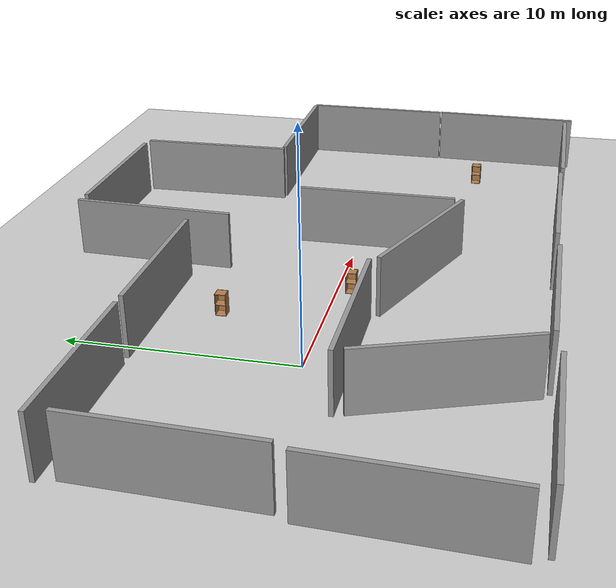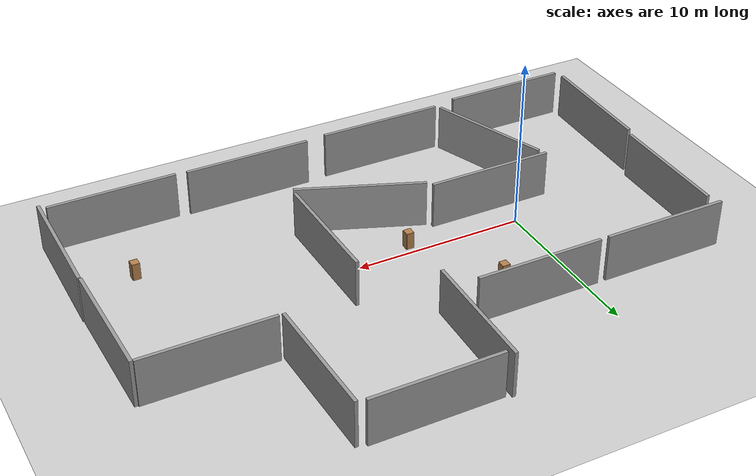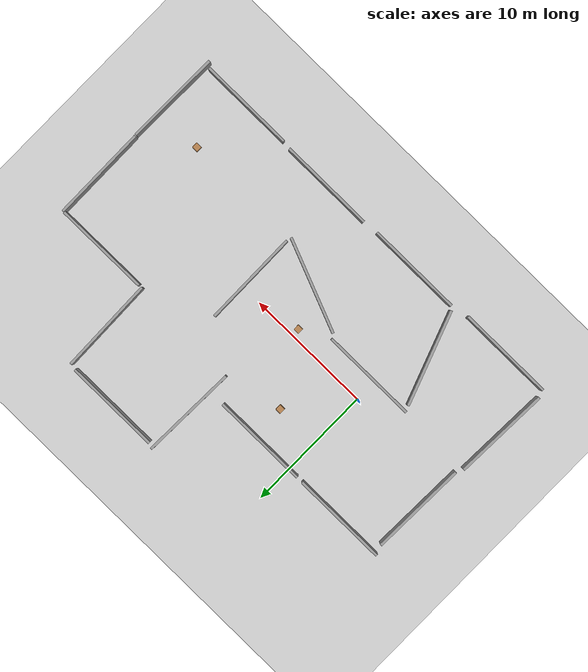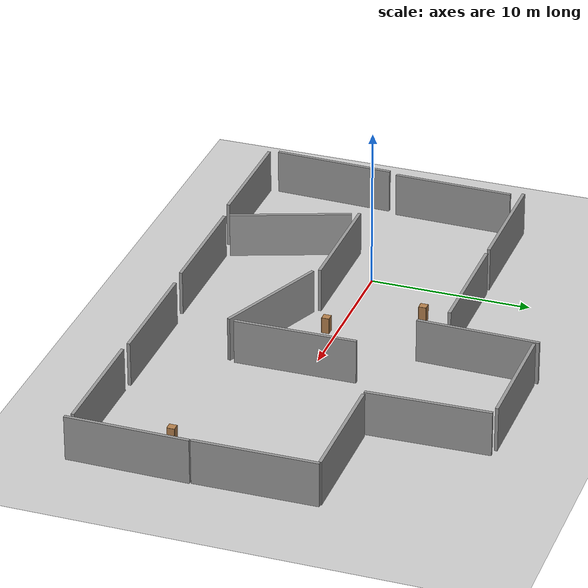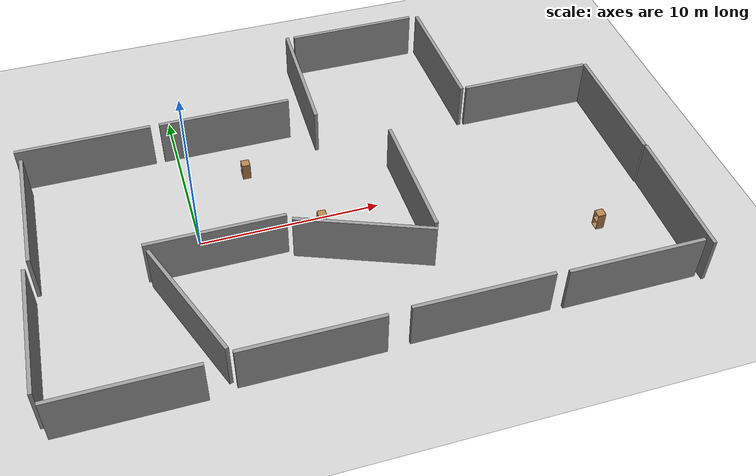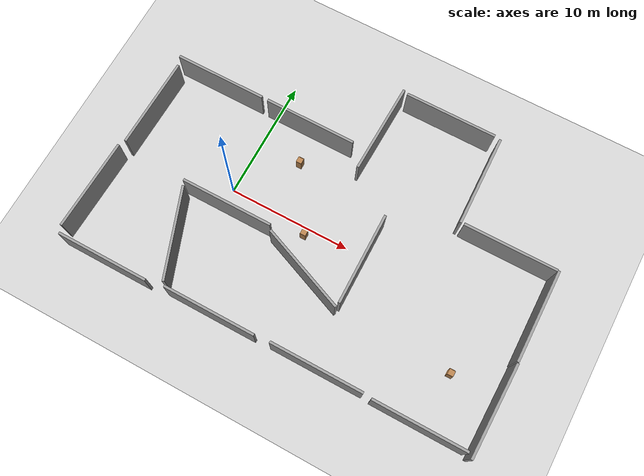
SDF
<sdf version="1.4">
 <world name="default">
  <light name="sun" type="directional">
   <pose>0 0 10 0 -0 0</pose>
   <diffuse>0.8 0.8 0.8 1</diffuse>
   <specular>0.2 0.2 0.2 1</specular>
   <attenuation>
    <range>1000</range>
    <constant>0.9</constant>
    <linear>0.01</linear>
    <quadratic>0.001</quadratic>
   </attenuation>
   <direction>-0.5 0.1 -0.9</direction>
  </light>
  <model name="ground_plane">
   <static>1</static>
   <link name="link">
    <collision name="collision">
     <geometry><plane><normal>0 0 1</normal><size>100 100</size></plane></geometry>
     <surface><friction><ode><mu>100</mu><mu2>50</mu2></ode></friction></surface>
    </collision>
    <visual name="visual">
     <cast_shadows>0</cast_shadows>
     <geometry><plane><normal>0 0 1</normal><size>100 100</size></plane></geometry>
     <material>
      <script><uri>file://media/materials/scripts/gazebo.material</uri><name>Gazebo/Grey</name></script>
     </material>
    </visual>
    <velocity_decay><linear>0</linear><angular>0</angular></velocity_decay>
   </link>
  </model>
  <physics type="ode">
   <max_step_size>0.001</max_step_size>
   <real_time_factor>1</real_time_factor>
   <real_time_update_rate>1000</real_time_update_rate>
   <gravity>0 0 -0.8</gravity>
  </physics>
  <scene><ambient>0.4 0.4 0.4 1</ambient><background>0.7 0.7 0.7 1</background><shadows>1</shadows></scene>
  <spherical_coordinates>
   <surface_model>EARTH_WGS84</surface_model>
   <latitude_deg>0</latitude_deg>
   <longitude_deg>0</longitude_deg>
   <elevation>0</elevation>
   <heading_deg>0</heading_deg>
  </spherical_coordinates>
  <model name="grey_wall">
   <static>1</static>
   <link name="link">
    <pose>0 0 1.4 0 -0 0</pose>
    <collision name="collision"><geometry><box><size>7.5 0.2 2.8</size></box></geometry></collision>
    <visual name="visual">
     <cast_shadows>0</cast_shadows>
     <geometry><box><size>7.5 0.2 2.8</size></box></geometry>
     <material>
      <script>
       <uri>model://grey_wall/materials/scripts</uri>
       <uri>model://grey_wall/materials/textures</uri>
       <name>vrc/grey_wall</name>
      </script>
     </material>
    </visual>
    <velocity_decay><linear>0</linear><angular>0</angular></velocity_decay>
   </link>
   <pose>12.3094 12.6629 0 0 -0 0</pose>
  </model>
  <model name="grey_wall_0">
   <static>1</static>
   <link name="link">
    <pose>0 0 1.4 0 -0 0</pose>
    <collision name="collision"><geometry><box><size>7.5 0.2 2.8</size></box></geometry></collision>
    <visual name="visual">
     <cast_shadows>0</cast_shadows>
     <geometry><box><size>7.5 0.2 2.8</size></box></geometry>
     <material>
      <script>
       <uri>model://grey_wall/materials/scripts</uri>
       <uri>model://grey_wall/materials/textures</uri>
       <name>vrc/grey_wall</name>
      </script>
     </material>
    </visual>
    <velocity_decay><linear>0</linear><angular>0</angular></velocity_decay>
   </link>
   <pose>16.6426 8.83215 0 0 -0 1.59678</pose>
  </model>
  <model name="grey_wall_1">
   <static>1</static>
   <link name="link">
    <pose>0 0 1.4 0 -0 0</pose>
    <collision name="collision"><geometry><box><size>7.5 0.2 2.8</size></box></geometry></collision>
    <visual name="visual">
     <cast_shadows>0</cast_shadows>
     <geometry><box><size>7.5 0.2 2.8</size></box></geometry>
     <material>
      <script>
       <uri>model://grey_wall/materials/scripts</uri>
       <uri>model://grey_wall/materials/textures</uri>
       <name>vrc/grey_wall</name>
      </script>
     </material>
    </visual>
    <velocity_decay><linear>0</linear><angular>0</angular></velocity_decay>
   </link>
   <pose>8.0788 9.1488 -0.09958 0 0 -1.59597</pose>
  </model>
  <model name="grey_wall_2">
   <static>1</static>
   <link name="link">
    <pose>0 0 1.4 0 -0 0</pose>
    <collision name="collision"><geometry><box><size>7.5 0.2 2.8</size></box></geometry></collision>
    <visual name="visual">
     <cast_shadows>0</cast_shadows>
     <geometry><box><size>7.5 0.2 2.8</size></box></geometry>
     <material>
      <script>
       <uri>model://grey_wall/materials/scripts</uri>
       <uri>model://grey_wall/materials/textures</uri>
       <name>vrc/grey_wall</name>
      </script>
     </material>
    </visual>
    <velocity_decay><linear>0</linear><angular>0</angular></velocity_decay>
   </link>
   <pose>24.7057 -6.1519 0 0 -0 1.55971</pose>
  </model>
  <model name="grey_wall_3">
   <static>1</static>
   <link name="link">
    <pose>0 0 1.4 0 -0 0</pose>
    <collision name="collision"><geometry><box><size>7.5 0.2 2.8</size></box></geometry></collision>
    <visual name="visual">
     <cast_shadows>0</cast_shadows>
     <geometry><box><size>7.5 0.2 2.8</size></box></geometry>
     <material>
      <script>
       <uri>model://grey_wall/materials/scripts</uri>
       <uri>model://grey_wall/materials/textures</uri>
       <name>vrc/grey_wall</name>
      </script>
     </material>
    </visual>
    <velocity_decay><linear>0</linear><angular>0</angular></velocity_decay>
   </link>
   <pose>0.69238 -1.8135 0 0 -0 0</pose>
  </model>
  <model name="grey_wall_4">
   <static>1</static>
   <link name="link">
    <pose>0 0 1.4 0 -0 0</pose>
    <collision name="collision"><geometry><box><size>7.5 0.2 2.8</size></box></geometry></collision>
    <visual name="visual">
     <cast_shadows>0</cast_shadows>
     <geometry><box><size>7.5 0.2 2.8</size></box></geometry>
     <material>
      <script>
       <uri>model://grey_wall/materials/scripts</uri>
       <uri>model://grey_wall/materials/textures</uri>
       <name>vrc/grey_wall</name>
      </script>
     </material>
    </visual>
    <velocity_decay><linear>0</linear><angular>0</angular></velocity_decay>
   </link>
   <pose>20.769 5.12406 0 0 -0 0.002079</pose>
  </model>
  <model name="grey_wall_5">
   <static>1</static>
   <link name="link">
    <pose>0 0 1.4 0 -0 0</pose>
    <collision name="collision"><geometry><box><size>7.5 0.2 2.8</size></box></geometry></collision>
    <visual name="visual">
     <cast_shadows>0</cast_shadows>
     <geometry><box><size>7.5 0.2 2.8</size></box></geometry>
     <material>
      <script>
       <uri>model://grey_wall/materials/scripts</uri>
       <uri>model://grey_wall/materials/textures</uri>
       <name>vrc/grey_wall</name>
      </script>
     </material>
    </visual>
    <velocity_decay><linear>0</linear><angular>0</angular></velocity_decay>
   </link>
   <pose>12.4256 -9.43002 0 0 -0 0</pose>
  </model>
  <model name="grey_wall_6">
   <static>1</static>
   <link name="link">
    <pose>0 0 1.4 0 -0 0</pose>
    <collision name="collision"><geometry><box><size>7.5 0.2 2.8</size></box></geometry></collision>
    <visual name="visual">
     <cast_shadows>0</cast_shadows>
     <geometry><box><size>7.5 0.2 2.8</size></box></geometry>
     <material>
      <script>
       <uri>model://grey_wall/materials/scripts</uri>
       <uri>model://grey_wall/materials/textures</uri>
       <name>vrc/grey_wall</name>
      </script>
     </material>
    </visual>
    <velocity_decay><linear>0</linear><angular>0</angular></velocity_decay>
   </link>
   <pose>11.6373 -0.845307 0 0 -0 1.58205</pose>
  </model>
  <model name="grey_wall_7">
   <static>1</static>
   <link name="link">
    <pose>0 0 1.4 0 -0 0</pose>
    <collision name="collision"><geometry><box><size>7.5 0.2 2.8</size></box></geometry></collision>
    <visual name="visual">
     <cast_shadows>0</cast_shadows>
     <geometry><box><size>7.5 0.2 2.8</size></box></geometry>
     <material>
      <script>
       <uri>model://grey_wall/materials/scripts</uri>
       <uri>model://grey_wall/materials/textures</uri>
       <name>vrc/grey_wall</name>
      </script>
     </material>
    </visual>
    <velocity_decay><linear>0</linear><angular>0</angular></velocity_decay>
   </link>
   <pose>24.6624 1.40772 0 0 0 -1.56133</pose>
  </model>
  <model name="grey_wall_8">
   <static>1</static>
   <link name="link">
    <pose>0 0 1.4 0 -0 0</pose>
    <collision name="collision"><geometry><box><size>7.5 0.2 2.8</size></box></geometry></collision>
    <visual name="visual">
     <cast_shadows>0</cast_shadows>
     <geometry><box><size>7.5 0.2 2.8</size></box></geometry>
     <material>
      <script>
       <uri>model://grey_wall/materials/scripts</uri>
       <uri>model://grey_wall/materials/textures</uri>
       <name>vrc/grey_wall</name>
      </script>
     </material>
    </visual>
    <velocity_decay><linear>0</linear><angular>0</angular></velocity_decay>
   </link>
   <pose>-9.01284 -5.49892 0 0 -0 1.53671</pose>
  </model>
  <model name="grey_wall_9">
   <static>1</static>
   <link name="link">
    <pose>0 0 1.4 0 -0 0</pose>
    <collision name="collision"><geometry><box><size>7.5 0.2 2.8</size></box></geometry></collision>
    <visual name="visual">
     <cast_shadows>0</cast_shadows>
     <geometry><box><size>7.5 0.2 2.8</size></box></geometry>
     <material>
      <script>
       <uri>model://grey_wall/materials/scripts</uri>
       <uri>model://grey_wall/materials/textures</uri>
       <name>vrc/grey_wall</name>
      </script>
     </material>
    </visual>
    <velocity_decay><linear>0</linear><angular>0</angular></velocity_decay>
   </link>
   <pose>-5.19 -9.81877 0 0 -0 0</pose>
  </model>
  <model name="grey_wall_10">
   <static>1</static>
   <link name="link">
    <pose>0 0 1.4 0 -0 0</pose>
    <collision name="collision"><geometry><box><size>7.5 0.2 2.8</size></box></geometry></collision>
    <visual name="visual">
     <cast_shadows>0</cast_shadows>
     <geometry><box><size>7.5 0.2 2.8</size></box></geometry>
     <material>
      <script>
       <uri>model://grey_wall/materials/scripts</uri>
       <uri>model://grey_wall/materials/textures</uri>
       <name>vrc/grey_wall</name>
      </script>
     </material>
    </visual>
    <velocity_decay><linear>0</linear><angular>0</angular></velocity_decay>
   </link>
   <pose>8.13415 -3.57192 -0 0 0 -0.381739</pose>
  </model>
  <model name="cabinet">
   <static>1</static>
   <link name="cabinet_bottom_plate">
    <inertial>
     <pose>0 0 -1 0 -0 0</pose>
     <inertia><ixx>2.05</ixx><ixy>0</ixy><ixz>0</ixz><iyy>2.05</iyy><iyz>0</iyz><izz>2.05</izz></inertia>
     <mass>25</mass>
    </inertial>
    <collision name="cabinet_bottom_plate_geom">
     <pose>0 0 0.01 0 -0 0</pose>
     <geometry><box><size>0.45 0.45 0.02</size></box></geometry>
    </collision>
    <visual name="cabinet_bottom_plate_geom_visual">
     <pose>0 0 0.01 0 -0 0</pose>
     <geometry><box><size>0.45 0.45 0.02</size></box></geometry>
     <material>
      <script><uri>file://media/materials/scripts/gazebo.material</uri><name>Gazebo/Wood</name></script>
     </material>
    </visual>
    <collision name="cabinet_bottom_plate_geom_cabinet_back_plate">
     <pose>0.235 0 0.51 0 -0 0</pose>
     <geometry><box><size>0.02 0.45 1.02</size></box></geometry>
    </collision>
    <visual name="cabinet_bottom_plate_geom_cabinet_back_plate_visual">
     <pose>0.235 0 0.51 0 -0 0</pose>
     <geometry><box><size>0.02 0.45 1.02</size></box></geometry>
     <material>
      <script><uri>file://media/materials/scripts/gazebo.material</uri><name>Gazebo/Wood</name></script>
     </material>
    </visual>
    <collision name="cabinet_bottom_plate_geom_cabinet_left_plate">
     <pose>0 0.235 0.51 0 -0 0</pose>
     <geometry><box><size>0.45 0.02 1.02</size></box></geometry>
    </collision>
    <visual name="cabinet_bottom_plate_geom_cabinet_left_plate_visual">
     <pose>0 0.235 0.51 0 -0 0</pose>
     <geometry><box><size>0.45 0.02 1.02</size></box></geometry>
     <material>
      <script><uri>file://media/materials/scripts/gazebo.material</uri><name>Gazebo/Wood</name></script>
     </material>
    </visual>
    <collision name="cabinet_bottom_plate_geom_cabinet_middle_plate">
     <pose>0 0 0.51 0 -0 0</pose>
     <geometry><box><size>0.45 0.45 0.02</size></box></geometry>
    </collision>
    <visual name="cabinet_bottom_plate_geom_cabinet_middle_plate_visual">
     <pose>0 0 0.51 0 -0 0</pose>
     <geometry><box><size>0.45 0.45 0.02</size></box></geometry>
     <material>
      <script><uri>file://media/materials/scripts/gazebo.material</uri><name>Gazebo/Wood</name></script>
     </material>
    </visual>
    <collision name="cabinet_bottom_plate_geom_cabinet_right_plate">
     <pose>0 -0.235 0.51 0 -0 0</pose>
     <geometry><box><size>0.45 0.02 1.02</size></box></geometry>
    </collision>
    <visual name="cabinet_bottom_plate_geom_cabinet_right_plate_visual">
     <pose>0 -0.235 0.51 0 -0 0</pose>
     <geometry><box><size>0.45 0.02 1.02</size></box></geometry>
     <material>
      <script><uri>file://media/materials/scripts/gazebo.material</uri><name>Gazebo/Wood</name></script>
     </material>
    </visual>
    <collision name="cabinet_bottom_plate_geom_cabinet_top_plate">
     <pose>0 0 1.01 0 -0 0</pose>
     <geometry><box><size>0.45 0.45 0.02</size></box></geometry>
    </collision>
    <visual name="cabinet_bottom_plate_geom_cabinet_top_plate_visual">
     <pose>0 0 1.01 0 -0 0</pose>
     <geometry><box><size>0.45 0.45 0.02</size></box></geometry>
     <material>
      <script><uri>file://media/materials/scripts/gazebo.material</uri><name>Gazebo/Wood</name></script>
     </material>
    </visual>
    <velocity_decay><linear>0</linear><angular>0</angular></velocity_decay>
   </link>
   <pose>21.0895 -4.87777 0 0 -0 0</pose>
  </model>
  <model name="cabinet_0">
   <static>1</static>
   <link name="cabinet_bottom_plate">
    <inertial>
     <pose>0 0 -1 0 -0 0</pose>
     <inertia><ixx>2.05</ixx><ixy>0</ixy><ixz>0</ixz><iyy>2.05</iyy><iyz>0</iyz><izz>2.05</izz></inertia>
     <mass>25</mass>
    </inertial>
    <collision name="cabinet_bottom_plate_geom">
     <pose>0 0 0.01 0 -0 0</pose>
     <geometry><box><size>0.45 0.45 0.02</size></box></geometry>
    </collision>
    <visual name="cabinet_bottom_plate_geom_visual">
     <pose>0 0 0.01 0 -0 0</pose>
     <geometry><box><size>0.45 0.45 0.02</size></box></geometry>
     <material>
      <script><uri>file://media/materials/scripts/gazebo.material</uri><name>Gazebo/Wood</name></script>
     </material>
    </visual>
    <collision name="cabinet_bottom_plate_geom_cabinet_back_plate">
     <pose>0.235 0 0.51 0 -0 0</pose>
     <geometry><box><size>0.02 0.45 1.02</size></box></geometry>
    </collision>
    <visual name="cabinet_bottom_plate_geom_cabinet_back_plate_visual">
     <pose>0.235 0 0.51 0 -0 0</pose>
     <geometry><box><size>0.02 0.45 1.02</size></box></geometry>
     <material>
      <script><uri>file://media/materials/scripts/gazebo.material</uri><name>Gazebo/Wood</name></script>
     </material>
    </visual>
    <collision name="cabinet_bottom_plate_geom_cabinet_left_plate">
     <pose>0 0.235 0.51 0 -0 0</pose>
     <geometry><box><size>0.45 0.02 1.02</size></box></geometry>
    </collision>
    <visual name="cabinet_bottom_plate_geom_cabinet_left_plate_visual">
     <pose>0 0.235 0.51 0 -0 0</pose>
     <geometry><box><size>0.45 0.02 1.02</size></box></geometry>
     <material>
      <script><uri>file://media/materials/scripts/gazebo.material</uri><name>Gazebo/Wood</name></script>
     </material>
    </visual>
    <collision name="cabinet_bottom_plate_geom_cabinet_middle_plate">
     <pose>0 0 0.51 0 -0 0</pose>
     <geometry><box><size>0.45 0.45 0.02</size></box></geometry>
    </collision>
    <visual name="cabinet_bottom_plate_geom_cabinet_middle_plate_visual">
     <pose>0 0 0.51 0 -0 0</pose>
     <geometry><box><size>0.45 0.45 0.02</size></box></geometry>
     <material>
      <script><uri>file://media/materials/scripts/gazebo.material</uri><name>Gazebo/Wood</name></script>
     </material>
    </visual>
    <collision name="cabinet_bottom_plate_geom_cabinet_right_plate">
     <pose>0 -0.235 0.51 0 -0 0</pose>
     <geometry><box><size>0.45 0.02 1.02</size></box></geometry>
    </collision>
    <visual name="cabinet_bottom_plate_geom_cabinet_right_plate_visual">
     <pose>0 -0.235 0.51 0 -0 0</pose>
     <geometry><box><size>0.45 0.02 1.02</size></box></geometry>
     <material>
      <script><uri>file://media/materials/scripts/gazebo.material</uri><name>Gazebo/Wood</name></script>
     </material>
    </visual>
    <collision name="cabinet_bottom_plate_geom_cabinet_top_plate">
     <pose>0 0 1.01 0 -0 0</pose>
     <geometry><box><size>0.45 0.45 0.02</size></box></geometry>
    </collision>
    <visual name="cabinet_bottom_plate_geom_cabinet_top_plate_visual">
     <pose>0 0 1.01 0 -0 0</pose>
     <geometry><box><size>0.45 0.45 0.02</size></box></geometry>
     <material>
      <script><uri>file://media/materials/scripts/gazebo.material</uri><name>Gazebo/Wood</name></script>
     </material>
    </visual>
    <velocity_decay><linear>0</linear><angular>0</angular></velocity_decay>
   </link>
   <pose>3.51005 4.40947 0 0 -0 0</pose>
  </model>
  <model name="cabinet_1">
   <static>1</static>
   <link name="cabinet_bottom_plate">
    <inertial>
     <pose>0 0 -1 0 -0 0</pose>
     <inertia><ixx>2.05</ixx><ixy>0</ixy><ixz>0</ixz><iyy>2.05</iyy><iyz>0</iyz><izz>2.05</izz></inertia>
     <mass>25</mass>
    </inertial>
    <collision name="cabinet_bottom_plate_geom">
     <pose>0 0 0.01 0 -0 0</pose>
     <geometry><box><size>0.45 0.45 0.02</size></box></geometry>
    </collision>
    <visual name="cabinet_bottom_plate_geom_visual">
     <pose>0 0 0.01 0 -0 0</pose>
     <geometry><box><size>0.45 0.45 0.02</size></box></geometry>
     <material>
      <script><uri>file://media/materials/scripts/gazebo.material</uri><name>Gazebo/Wood</name></script>
     </material>
    </visual>
    <collision name="cabinet_bottom_plate_geom_cabinet_back_plate">
     <pose>0.235 0 0.51 0 -0 0</pose>
     <geometry><box><size>0.02 0.45 1.02</size></box></geometry>
    </collision>
    <visual name="cabinet_bottom_plate_geom_cabinet_back_plate_visual">
     <pose>0.235 0 0.51 0 -0 0</pose>
     <geometry><box><size>0.02 0.45 1.02</size></box></geometry>
     <material>
      <script><uri>file://media/materials/scripts/gazebo.material</uri><name>Gazebo/Wood</name></script>
     </material>
    </visual>
    <collision name="cabinet_bottom_plate_geom_cabinet_left_plate">
     <pose>0 0.235 0.51 0 -0 0</pose>
     <geometry><box><size>0.45 0.02 1.02</size></box></geometry>
    </collision>
    <visual name="cabinet_bottom_plate_geom_cabinet_left_plate_visual">
     <pose>0 0.235 0.51 0 -0 0</pose>
     <geometry><box><size>0.45 0.02 1.02</size></box></geometry>
     <material>
      <script><uri>file://media/materials/scripts/gazebo.material</uri><name>Gazebo/Wood</name></script>
     </material>
    </visual>
    <collision name="cabinet_bottom_plate_geom_cabinet_middle_plate">
     <pose>0 0 0.51 0 -0 0</pose>
     <geometry><box><size>0.45 0.45 0.02</size></box></geometry>
    </collision>
    <visual name="cabinet_bottom_plate_geom_cabinet_middle_plate_visual">
     <pose>0 0 0.51 0 -0 0</pose>
     <geometry><box><size>0.45 0.45 0.02</size></box></geometry>
     <material>
      <script><uri>file://media/materials/scripts/gazebo.material</uri><name>Gazebo/Wood</name></script>
     </material>
    </visual>
    <collision name="cabinet_bottom_plate_geom_cabinet_right_plate">
     <pose>0 -0.235 0.51 0 -0 0</pose>
     <geometry><box><size>0.45 0.02 1.02</size></box></geometry>
    </collision>
    <visual name="cabinet_bottom_plate_geom_cabinet_right_plate_visual">
     <pose>0 -0.235 0.51 0 -0 0</pose>
     <geometry><box><size>0.45 0.02 1.02</size></box></geometry>
     <material>
      <script><uri>file://media/materials/scripts/gazebo.material</uri><name>Gazebo/Wood</name></script>
     </material>
    </visual>
    <collision name="cabinet_bottom_plate_geom_cabinet_top_plate">
     <pose>0 0 1.01 0 -0 0</pose>
     <geometry><box><size>0.45 0.45 0.02</size></box></geometry>
    </collision>
    <visual name="cabinet_bottom_plate_geom_cabinet_top_plate_visual">
     <pose>0 0 1.01 0 -0 0</pose>
     <geometry><box><size>0.45 0.45 0.02</size></box></geometry>
     <material>
      <script><uri>file://media/materials/scripts/gazebo.material</uri><name>Gazebo/Wood</name></script>
     </material>
    </visual>
    <velocity_decay><linear>0</linear><angular>0</angular></velocity_decay>
   </link>
   <pose>6.6251 -0.634353 0 0 -0 0</pose>
  </model>
  <model name="grey_wall_11">
   <static>1</static>
   <link name="link">
    <pose>0 0 1.4 0 -0 0</pose>
    <collision name="collision"><geometry><box><size>7.5 0.2 2.8</size></box></geometry></collision>
    <visual name="visual">
     <cast_shadows>0</cast_shadows>
     <geometry><box><size>7.5 0.2 2.8</size></box></geometry>
     <material>
      <script>
       <uri>model://grey_wall/materials/scripts</uri>
       <uri>model://grey_wall/materials/textures</uri>
       <name>vrc/grey_wall</name>
      </script>
     </material>
    </visual>
    <velocity_decay><linear>0</linear><angular>0</angular></velocity_decay>
   </link>
   <pose>20.5784 -9.52584 0 0 -0 0</pose>
  </model>
  <model name="grey_wall_12">
   <static>1</static>
   <link name="link">
    <pose>0 0 1.4 0 -0 0</pose>
    <collision name="collision"><geometry><box><size>7.5 0.2 2.8</size></box></geometry></collision>
    <visual name="visual">
     <cast_shadows>0</cast_shadows>
     <geometry><box><size>7.5 0.2 2.8</size></box></geometry>
     <material>
      <script>
       <uri>model://grey_wall/materials/scripts</uri>
       <uri>model://grey_wall/materials/textures</uri>
       <name>vrc/grey_wall</name>
      </script>
     </material>
    </visual>
    <velocity_decay><linear>0</linear><angular>0</angular></velocity_decay>
   </link>
   <pose>3 7 0 0 -0 0</pose>
  </model>
  <model name="grey_wall_13">
   <static>1</static>
   <link name="link">
    <pose>0 0 1.4 0 -0 0</pose>
    <collision name="collision"><geometry><box><size>7.5 0.2 2.8</size></box></geometry></collision>
    <visual name="visual">
     <cast_shadows>0</cast_shadows>
     <geometry><box><size>7.5 0.2 2.8</size></box></geometry>
     <material>
      <script>
       <uri>model://grey_wall/materials/scripts</uri>
       <uri>model://grey_wall/materials/textures</uri>
       <name>vrc/grey_wall</name>
      </script>
     </material>
    </visual>
    <velocity_decay><linear>0</linear><angular>0</angular></velocity_decay>
   </link>
   <pose>-5 7 0 0 -0 0</pose>
  </model>
  <model name="grey_wall_14">
   <static>1</static>
   <link name="link">
    <pose>0 0 1.4 0 -0 0</pose>
    <collision name="collision"><geometry><box><size>7.5 0.2 2.8</size></box></geometry></collision>
    <visual name="visual">
     <cast_shadows>0</cast_shadows>
     <geometry><box><size>7.5 0.2 2.8</size></box></geometry>
     <material>
      <script>
       <uri>model://grey_wall/materials/scripts</uri>
       <uri>model://grey_wall/materials/textures</uri>
       <name>vrc/grey_wall</name>
      </script>
     </material>
    </visual>
    <velocity_decay><linear>0</linear><angular>0</angular></velocity_decay>
   </link>
   <pose>-8.52169 2.50987 0 0 -0 1.54666</pose>
  </model>
  <model name="grey_wall_15">
   <static>1</static>
   <link name="link">
    <pose>0 0 1.4 0 -0 0</pose>
    <collision name="collision"><geometry><box><size>7.5 0.2 2.8</size></box></geometry></collision>
    <visual name="visual">
     <cast_shadows>0</cast_shadows>
     <geometry><box><size>7.5 0.2 2.8</size></box></geometry>
     <material>
      <script>
       <uri>model://grey_wall/materials/scripts</uri>
       <uri>model://grey_wall/materials/textures</uri>
       <name>vrc/grey_wall</name>
      </script>
     </material>
    </visual>
    <velocity_decay><linear>0</linear><angular>0</angular></velocity_decay>
   </link>
   <pose>-1.54338 -5.76191 0 0 -0 1.9208</pose>
  </model>
  <model name="grey_wall_16">
   <static>1</static>
   <link name="link">
    <pose>0 0 1.4 0 -0 0</pose>
    <collision name="collision"><geometry><box><size>7.5 0.2 2.8</size></box></geometry></collision>
    <visual name="visual">
     <cast_shadows>0</cast_shadows>
     <geometry><box><size>7.5 0.2 2.8</size></box></geometry>
     <material>
      <script>
       <uri>model://grey_wall/materials/scripts</uri>
       <uri>model://grey_wall/materials/textures</uri>
       <name>vrc/grey_wall</name>
      </script>
     </material>
    </visual>
    <velocity_decay><linear>0</linear><angular>0</angular></velocity_decay>
   </link>
   <pose>3.72257 -9.53948 0 0 -0 0</pose>
  </model>
 </world>
</sdf>
